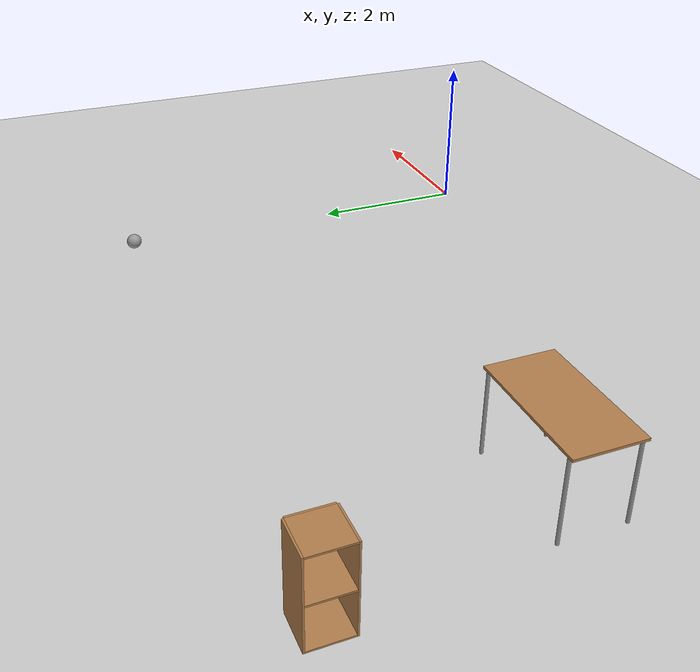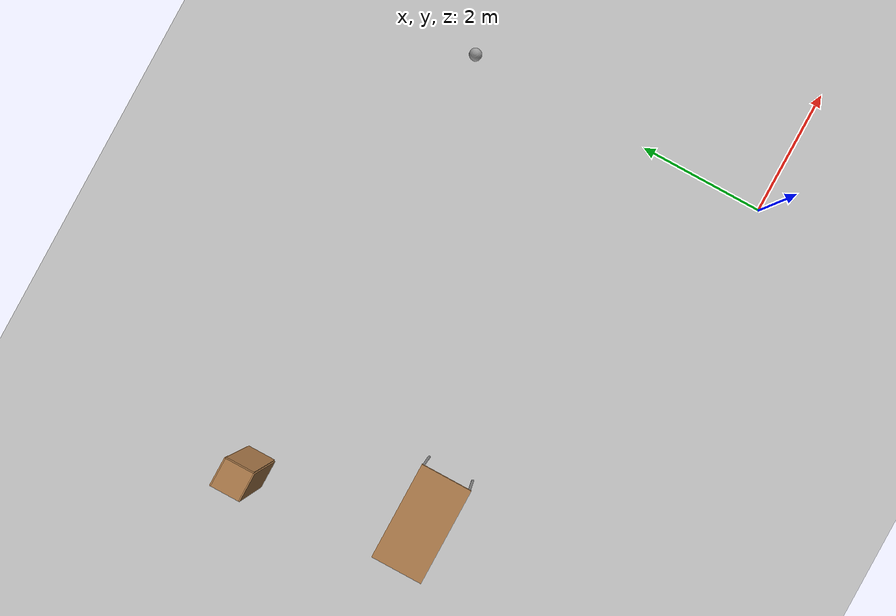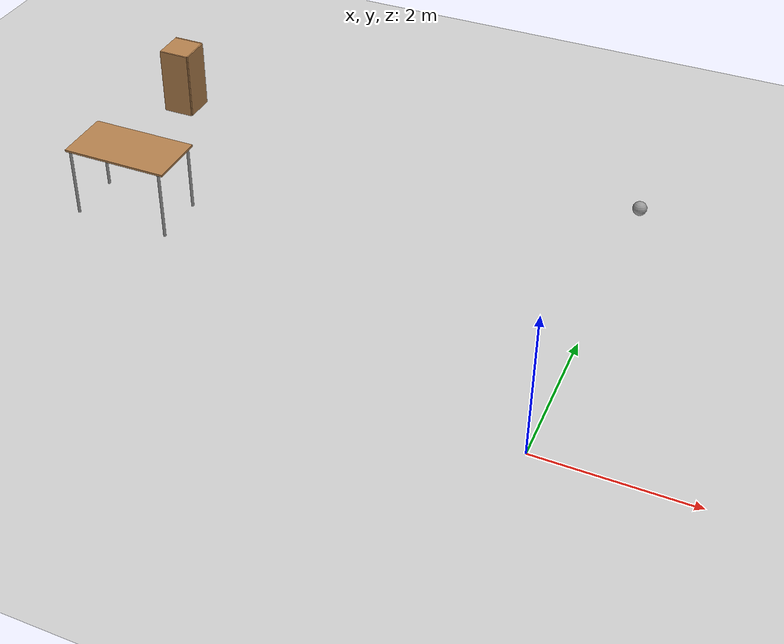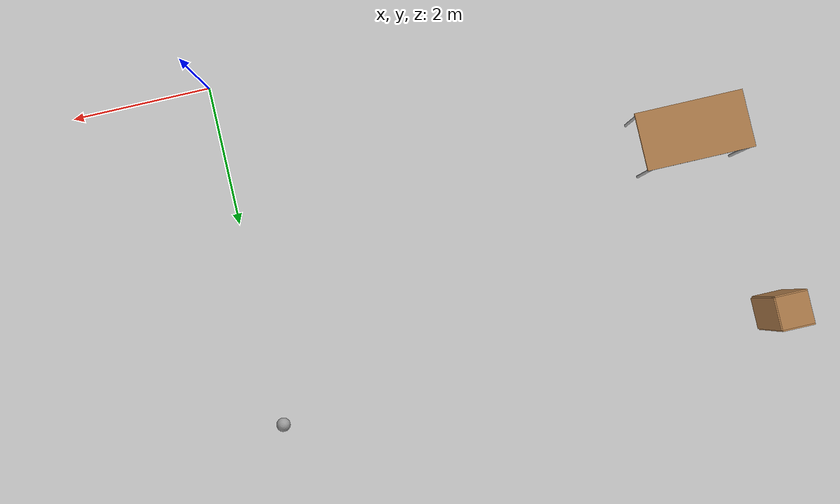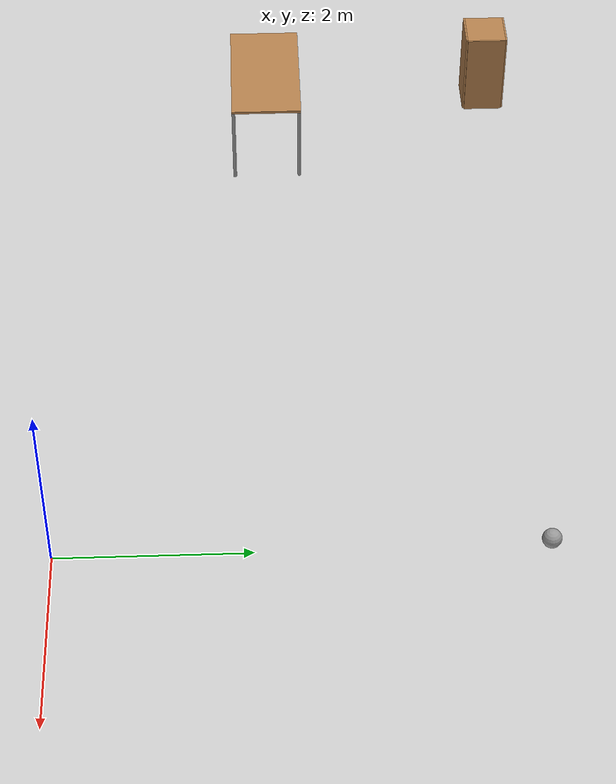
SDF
<sdf version="1.6">
 <world name="default">
  <model name="ground_plane">
   <static>1</static>
   <link name="link">
    <collision name="collision">
     <geometry><plane><normal>0 0 1</normal><size>100 100</size></plane></geometry>
     <surface><friction><ode><mu>100</mu><mu2>50</mu2></ode></friction></surface>
    </collision>
    <visual name="visual">
     <cast_shadows>0</cast_shadows>
     <geometry><plane><normal>0 0 1</normal><size>100 100</size></plane></geometry>
     <material>
      <script><uri>file://media/materials/scripts/gazebo.material</uri><name>Gazebo/Grey</name></script>
     </material>
    </visual>
   </link>
  </model>
  <model name="table">
   <static>1</static>
   <link name="link">
    <collision name="surface">
     <pose>0 0 1 0 -0 0</pose>
     <geometry><box><size>1.5 0.8 0.03</size></box></geometry>
     <surface><friction><ode><mu>0.6</mu><mu2>0.6</mu2></ode></friction></surface>
    </collision>
    <visual name="visual1">
     <pose>0 0 1 0 -0 0</pose>
     <geometry><box><size>1.5 0.8 0.03</size></box></geometry>
     <material>
      <script><uri>file://media/materials/scripts/gazebo.material</uri><name>Gazebo/Wood</name></script>
     </material>
    </visual>
    <collision name="front_left_leg">
     <pose>0.68 0.38 0.5 0 -0 0</pose>
     <geometry><cylinder><radius>0.02</radius><length>1</length></cylinder></geometry>
    </collision>
    <visual name="front_left_leg">
     <pose>0.68 0.38 0.5 0 -0 0</pose>
     <geometry><cylinder><radius>0.02</radius><length>1</length></cylinder></geometry>
     <material>
      <script><uri>file://media/materials/scripts/gazebo.material</uri><name>Gazebo/Grey</name></script>
     </material>
    </visual>
    <collision name="front_right_leg">
     <pose>0.68 -0.38 0.5 0 -0 0</pose>
     <geometry><cylinder><radius>0.02</radius><length>1</length></cylinder></geometry>
    </collision>
    <visual name="front_right_leg">
     <pose>0.68 -0.38 0.5 0 -0 0</pose>
     <geometry><cylinder><radius>0.02</radius><length>1</length></cylinder></geometry>
     <material>
      <script><uri>file://media/materials/scripts/gazebo.material</uri><name>Gazebo/Grey</name></script>
     </material>
    </visual>
    <collision name="back_right_leg">
     <pose>-0.68 -0.38 0.5 0 -0 0</pose>
     <geometry><cylinder><radius>0.02</radius><length>1</length></cylinder></geometry>
    </collision>
    <visual name="back_right_leg">
     <pose>-0.68 -0.38 0.5 0 -0 0</pose>
     <geometry><cylinder><radius>0.02</radius><length>1</length></cylinder></geometry>
     <material>
      <script><uri>file://media/materials/scripts/gazebo.material</uri><name>Gazebo/Grey</name></script>
     </material>
    </visual>
    <collision name="back_left_leg">
     <pose>-0.68 0.38 0.5 0 -0 0</pose>
     <geometry><cylinder><radius>0.02</radius><length>1</length></cylinder></geometry>
    </collision>
    <visual name="back_left_leg">
     <pose>-0.68 0.38 0.5 0 -0 0</pose>
     <geometry><cylinder><radius>0.02</radius><length>1</length></cylinder></geometry>
     <material>
      <script><uri>file://media/materials/scripts/gazebo.material</uri><name>Gazebo/Grey</name></script>
     </material>
    </visual>
   </link>
   <pose>-6.41665 2.24614 0 0 -0 0</pose>
  </model>
  <model name="cabinet">
   <static>1</static>
   <link name="cabinet_bottom_plate">
    <inertial>
     <pose>0 0 -1 0 -0 0</pose>
     <inertia><ixx>2.05</ixx><ixy>0</ixy><ixz>0</ixz><iyy>2.05</iyy><iyz>0</iyz><izz>2.05</izz></inertia>
     <mass>25</mass>
    </inertial>
    <collision name="cabinet_bottom_plate_geom">
     <pose>0 0 0.01 0 -0 0</pose>
     <geometry><box><size>0.45 0.45 0.02</size></box></geometry>
    </collision>
    <visual name="cabinet_bottom_plate_geom_visual">
     <pose>0 0 0.01 0 -0 0</pose>
     <geometry><box><size>0.45 0.45 0.02</size></box></geometry>
     <material>
      <script><uri>file://media/materials/scripts/gazebo.material</uri><name>Gazebo/Wood</name></script>
     </material>
    </visual>
    <collision name="cabinet_bottom_plate_geom_cabinet_back_plate">
     <pose>0.235 0 0.51 0 -0 0</pose>
     <geometry><box><size>0.02 0.45 1.02</size></box></geometry>
    </collision>
    <visual name="cabinet_bottom_plate_geom_cabinet_back_plate_visual">
     <pose>0.235 0 0.51 0 -0 0</pose>
     <geometry><box><size>0.02 0.45 1.02</size></box></geometry>
     <material>
      <script><uri>file://media/materials/scripts/gazebo.material</uri><name>Gazebo/Wood</name></script>
     </material>
    </visual>
    <collision name="cabinet_bottom_plate_geom_cabinet_left_plate">
     <pose>0 0.235 0.51 0 -0 0</pose>
     <geometry><box><size>0.45 0.02 1.02</size></box></geometry>
    </collision>
    <visual name="cabinet_bottom_plate_geom_cabinet_left_plate_visual">
     <pose>0 0.235 0.51 0 -0 0</pose>
     <geometry><box><size>0.45 0.02 1.02</size></box></geometry>
     <material>
      <script><uri>file://media/materials/scripts/gazebo.material</uri><name>Gazebo/Wood</name></script>
     </material>
    </visual>
    <collision name="cabinet_bottom_plate_geom_cabinet_middle_plate">
     <pose>0 0 0.51 0 -0 0</pose>
     <geometry><box><size>0.45 0.45 0.02</size></box></geometry>
    </collision>
    <visual name="cabinet_bottom_plate_geom_cabinet_middle_plate_visual">
     <pose>0 0 0.51 0 -0 0</pose>
     <geometry><box><size>0.45 0.45 0.02</size></box></geometry>
     <material>
      <script><uri>file://media/materials/scripts/gazebo.material</uri><name>Gazebo/Wood</name></script>
     </material>
    </visual>
    <collision name="cabinet_bottom_plate_geom_cabinet_right_plate">
     <pose>0 -0.235 0.51 0 -0 0</pose>
     <geometry><box><size>0.45 0.02 1.02</size></box></geometry>
    </collision>
    <visual name="cabinet_bottom_plate_geom_cabinet_right_plate_visual">
     <pose>0 -0.235 0.51 0 -0 0</pose>
     <geometry><box><size>0.45 0.02 1.02</size></box></geometry>
     <material>
      <script><uri>file://media/materials/scripts/gazebo.material</uri><name>Gazebo/Wood</name></script>
     </material>
    </visual>
    <collision name="cabinet_bottom_plate_geom_cabinet_top_plate">
     <pose>0 0 1.01 0 -0 0</pose>
     <geometry><box><size>0.45 0.45 0.02</size></box></geometry>
    </collision>
    <visual name="cabinet_bottom_plate_geom_cabinet_top_plate_visual">
     <pose>0 0 1.01 0 -0 0</pose>
     <geometry><box><size>0.45 0.45 0.02</size></box></geometry>
     <material>
      <script><uri>file://media/materials/scripts/gazebo.material</uri><name>Gazebo/Wood</name></script>
     </material>
    </visual>
   </link>
   <pose>-7.15271 4.90997 0 0 -0 0</pose>
  </model>
  <model name="white_ball">
   <plugin name="model_push" filename="libmodel_push.so"/>
   <link name="link_0">
    <inertial>
     <mass>1</mass>
     <inertia><ixx>0.1</ixx><ixy>0</ixy><ixz>0</ixz><iyy>0.1</iyy><iyz>0</iyz><izz>0.1</izz></inertia>
    </inertial>
    <visual name="visual">
     <geometry><sphere><radius>0.1</radius></sphere></geometry>
     <material>
      <lighting>1</lighting>
      <script><uri>file://media/materials/scripts/gazebo.material</uri><name>Gazebo/Grey</name></script>
      <ambient>1 1 1 1</ambient>
      <diffuse>1 1 1 1</diffuse>
      <specular>1 1 1 1</specular>
      <emissive>1 1 1 1</emissive>
      <shader type="vertex"><normal_map>__default__</normal_map></shader>
     </material>
    </visual>
    <collision name="collision">
     <geometry><sphere><radius>0.1</radius></sphere></geometry>
     <surface>
      <friction>
       <ode><mu>1</mu><mu2>1</mu2><fdir1>0 0 0</fdir1><slip1>0</slip1><slip2>0</slip2></ode>
       <torsional>
        <coefficient>1</coefficient>
        <patch_radius>0</patch_radius>
        <surface_radius>0</surface_radius>
        <use_patch_radius>1</use_patch_radius>
        <ode><slip>0</slip></ode>
       </torsional>
      </friction>
      <bounce><restitution_coefficient>0</restitution_coefficient><threshold>1e+06</threshold></bounce>
      <contact>
       <collide_without_contact>0</collide_without_contact>
       <collide_without_contact_bitmask>1</collide_without_contact_bitmask>
       <collide_bitmask>1</collide_bitmask>
       <ode>
        <soft_cfm>0</soft_cfm>
        <soft_erp>0.2</soft_erp>
        <kp>1e+13</kp>
        <kd>1</kd>
        <max_vel>0.01</max_vel>
        <min_depth>0</min_depth>
       </ode>
       <bullet>
        <split_impulse>1</split_impulse>
        <split_impulse_penetration_threshold>-0.01</split_impulse_penetration_threshold>
        <soft_cfm>0</soft_cfm>
        <soft_erp>0.2</soft_erp>
        <kp>1e+13</kp>
        <kd>1</kd>
       </bullet>
      </contact>
     </surface>
    </collision>
   </link>
   <static>0</static>
   <pose>-0.000575 4.93602 0.1 0 -0 0</pose>
  </model>
 </world>
</sdf>
